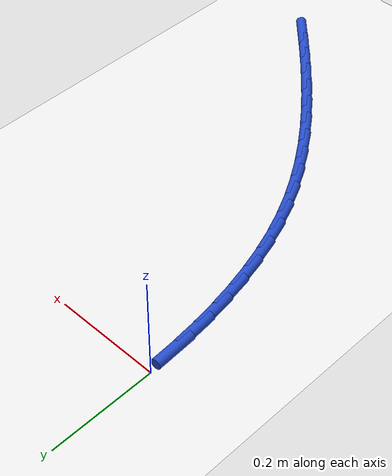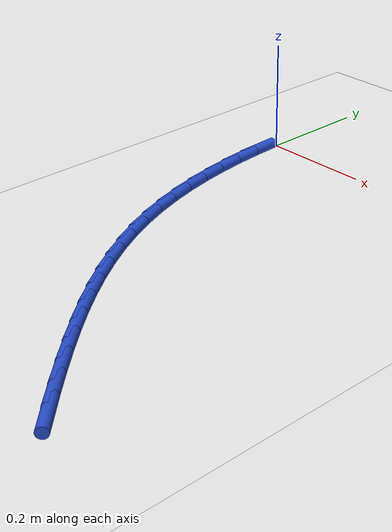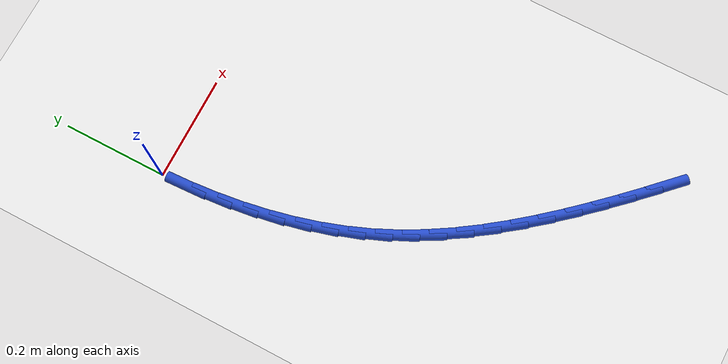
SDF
<sdf version="1.6">
 <world name="default">
  <model name="ground_plane">
   <static>1</static>
   <link name="link">
    <collision name="collision">
     <geometry><plane><normal>0 0 1</normal><size>100 100</size></plane></geometry>
     <surface><friction><ode><mu>100</mu><mu2>50</mu2></ode></friction></surface>
    </collision>
    <visual name="visual">
     <cast_shadows>0</cast_shadows>
     <geometry><plane><normal>0 0 1</normal><size>100 100</size></plane></geometry>
     <material>
      <script><uri>file://media/materials/scripts/gazebo.material</uri><name>Gazebo/WhiteGlow</name></script>
     </material>
    </visual>
   </link>
  </model>
  <model name="line">
   <link name="link_131">
    <pose>0.4038289137963621 -0.8178155869256982 0.01 0 1.57 -0.7874010072202662</pose>
    <collision name="collision">
     <geometry><cylinder><radius>0.01</radius><length>0.08</length></cylinder></geometry>
    </collision>
    <visual name="visual">
     <material>
      <script><name>Gazebo/Blue</name><uri>file://media/materials/scripts/gazebo.material</uri></script>
     </material>
     <geometry><cylinder><radius>0.01</radius><length>0.08</length></cylinder></geometry>
    </visual>
   </link>
   <link name="link_132">
    <pose>0.3675930221454629 -0.7814342541208943 0.01 0 1.57 -0.8059469571669071</pose>
    <collision name="collision">
     <geometry><cylinder><radius>0.01</radius><length>0.08</length></cylinder></geometry>
    </collision>
    <visual name="visual">
     <material>
      <script><name>Gazebo/Blue</name><uri>file://media/materials/scripts/gazebo.material</uri></script>
     </material>
     <geometry><cylinder><radius>0.01</radius><length>0.08</length></cylinder></geometry>
    </visual>
   </link>
   <link name="link_133">
    <pose>0.33219602063763365 -0.7445517876451763 0.01 0 1.57 -0.8232622990101492</pose>
    <collision name="collision">
     <geometry><cylinder><radius>0.01</radius><length>0.08</length></cylinder></geometry>
    </collision>
    <visual name="visual">
     <material>
      <script><name>Gazebo/Blue</name><uri>file://media/materials/scripts/gazebo.material</uri></script>
     </material>
     <geometry><cylinder><radius>0.01</radius><length>0.08</length></cylinder></geometry>
    </visual>
   </link>
   <link name="link_134">
    <pose>0.29767509501728123 -0.7073124213392855 0.01 0 1.57 -0.8440646956104065</pose>
    <collision name="collision">
     <geometry><cylinder><radius>0.01</radius><length>0.08</length></cylinder></geometry>
    </collision>
    <visual name="visual">
     <material>
      <script><name>Gazebo/Blue</name><uri>file://media/materials/scripts/gazebo.material</uri></script>
     </material>
     <geometry><cylinder><radius>0.01</radius><length>0.08</length></cylinder></geometry>
    </visual>
   </link>
   <link name="link_135">
    <pose>0.2642037022417915 -0.6696638750092007 0.01 0 1.57 -0.8698122276736373</pose>
    <collision name="collision">
     <geometry><cylinder><radius>0.01</radius><length>0.08</length></cylinder></geometry>
    </collision>
    <visual name="visual">
     <material>
      <script><name>Gazebo/Blue</name><uri>file://media/materials/scripts/gazebo.material</uri></script>
     </material>
     <geometry><cylinder><radius>0.01</radius><length>0.08</length></cylinder></geometry>
    </visual>
   </link>
   <link name="link_136">
    <pose>0.23199346794149361 -0.6314988261687091 0.01 0 1.57 -0.9006886472476497</pose>
    <collision name="collision">
     <geometry><cylinder><radius>0.01</radius><length>0.08</length></cylinder></geometry>
    </collision>
    <visual name="visual">
     <material>
      <script><name>Gazebo/Blue</name><uri>file://media/materials/scripts/gazebo.material</uri></script>
     </material>
     <geometry><cylinder><radius>0.01</radius><length>0.08</length></cylinder></geometry>
    </visual>
   </link>
   <link name="link_137">
    <pose>0.20125601961234887 -0.5927099496412099 0.01 0 1.57 -0.9368690413403414</pose>
    <collision name="collision">
     <geometry><cylinder><radius>0.01</radius><length>0.08</length></cylinder></geometry>
    </collision>
    <visual name="visual">
     <material>
      <script><name>Gazebo/Blue</name><uri>file://media/materials/scripts/gazebo.material</uri></script>
     </material>
     <geometry><cylinder><radius>0.01</radius><length>0.08</length></cylinder></geometry>
    </visual>
   </link>
   <link name="link_138">
    <pose>0.1722029847503187 -0.5531899202501022 0.01 0 1.57 -0.9784949359965945</pose>
    <collision name="collision">
     <geometry><cylinder><radius>0.01</radius><length>0.08</length></cylinder></geometry>
    </collision>
    <visual name="visual">
     <material>
      <script><name>Gazebo/Blue</name><uri>file://media/materials/scripts/gazebo.material</uri></script>
     </material>
     <geometry><cylinder><radius>0.01</radius><length>0.08</length></cylinder></geometry>
    </visual>
   </link>
   <link name="link_139">
    <pose>0.14504599085136302 -0.5128314128187833 0.01 0 1.57 -1.0256418972959989</pose>
    <collision name="collision">
     <geometry><cylinder><radius>0.01</radius><length>0.08</length></cylinder></geometry>
    </collision>
    <visual name="visual">
     <material>
      <script><name>Gazebo/Blue</name><uri>file://media/materials/scripts/gazebo.material</uri></script>
     </material>
     <geometry><cylinder><radius>0.01</radius><length>0.08</length></cylinder></geometry>
    </visual>
   </link>
   <link name="link_140">
    <pose>0.11999666541144363 -0.47152710217065336 0.01 0 1.57 -1.078280360406479</pose>
    <collision name="collision">
     <geometry><cylinder><radius>0.01</radius><length>0.08</length></cylinder></geometry>
    </collision>
    <visual name="visual">
     <material>
      <script><name>Gazebo/Blue</name><uri>file://media/materials/scripts/gazebo.material</uri></script>
     </material>
     <geometry><cylinder><radius>0.01</radius><length>0.08</length></cylinder></geometry>
    </visual>
   </link>
   <link name="link_141">
    <pose>0.09726663592652061 -0.4291696631291095 0.01 0 1.57 -1.1360947615899943</pose>
    <collision name="collision">
     <geometry><cylinder><radius>0.01</radius><length>0.08</length></cylinder></geometry>
    </collision>
    <visual name="visual">
     <material>
      <script><name>Gazebo/Blue</name><uri>file://media/materials/scripts/gazebo.material</uri></script>
     </material>
     <geometry><cylinder><radius>0.01</radius><length>0.08</length></cylinder></geometry>
    </visual>
   </link>
   <link name="link_142">
    <pose>0.07706169432682186 -0.38565489905793515 0.01 0 1.57 -1.195274962675345</pose>
    <collision name="collision">
     <geometry><cylinder><radius>0.01</radius><length>0.08</length></cylinder></geometry>
    </collision>
    <visual name="visual">
     <material>
      <script><name>Gazebo/Blue</name><uri>file://media/materials/scripts/gazebo.material</uri></script>
     </material>
     <geometry><cylinder><radius>0.01</radius><length>0.08</length></cylinder></geometry>
    </visual>
   </link>
   <link name="link_143">
    <pose>0.059440654985126705 -0.34095741034677707 0.01 0 1.57 -1.2518277869636132</pose>
    <collision name="collision">
     <geometry><cylinder><radius>0.01</radius><length>0.08</length></cylinder></geometry>
    </collision>
    <visual name="visual">
     <material>
      <script><name>Gazebo/Blue</name><uri>file://media/materials/scripts/gazebo.material</uri></script>
     </material>
     <geometry><cylinder><radius>0.01</radius><length>0.08</length></cylinder></geometry>
    </visual>
   </link>
   <link name="link_144">
    <pose>0.044307895899053325 -0.2951345932029481 0.01 0 1.57 -1.3053362289342858</pose>
    <collision name="collision">
     <geometry><cylinder><radius>0.01</radius><length>0.08</length></cylinder></geometry>
    </collision>
    <visual name="visual">
     <material>
      <script><name>Gazebo/Blue</name><uri>file://media/materials/scripts/gazebo.material</uri></script>
     </material>
     <geometry><cylinder><radius>0.01</radius><length>0.08</length></cylinder></geometry>
    </visual>
   </link>
   <link name="link_145">
    <pose>0.03156046659091159 -0.24824777274691576 0.01 0 1.57 -1.355653415743468</pose>
    <collision name="collision">
     <geometry><cylinder><radius>0.01</radius><length>0.08</length></cylinder></geometry>
    </collision>
    <visual name="visual">
     <material>
      <script><name>Gazebo/Blue</name><uri>file://media/materials/scripts/gazebo.material</uri></script>
     </material>
     <geometry><cylinder><radius>0.01</radius><length>0.08</length></cylinder></geometry>
    </visual>
   </link>
   <link name="link_146">
    <pose>0.021095416583010396 -0.20035827409914442 0.01 0 1.57 -1.402717152742429</pose>
    <collision name="collision">
     <geometry><cylinder><radius>0.01</radius><length>0.08</length></cylinder></geometry>
    </collision>
    <visual name="visual">
     <material>
      <script><name>Gazebo/Blue</name><uri>file://media/materials/scripts/gazebo.material</uri></script>
     </material>
     <geometry><cylinder><radius>0.01</radius><length>0.08</length></cylinder></geometry>
    </visual>
   </link>
   <link name="link_147">
    <pose>0.012809795397659295 -0.15152742238010095 0.01 0 1.57 -1.4465347645400366</pose>
    <collision name="collision">
     <geometry><cylinder><radius>0.01</radius><length>0.08</length></cylinder></geometry>
    </collision>
    <visual name="visual">
     <material>
      <script><name>Gazebo/Blue</name><uri>file://media/materials/scripts/gazebo.material</uri></script>
     </material>
     <geometry><cylinder><radius>0.01</radius><length>0.08</length></cylinder></geometry>
    </visual>
   </link>
   <link name="link_148">
    <pose>0.006600652557167718 -0.10181654271025228 0.01 0 1.57 -1.4871673750600534</pose>
    <collision name="collision">
     <geometry><cylinder><radius>0.01</radius><length>0.08</length></cylinder></geometry>
    </collision>
    <visual name="visual">
     <material>
      <script><name>Gazebo/Blue</name><uri>file://media/materials/scripts/gazebo.material</uri></script>
     </material>
     <geometry><cylinder><radius>0.01</radius><length>0.08</length></cylinder></geometry>
    </visual>
   </link>
   <link name="link_149">
    <pose>0.002365037583844791 -0.05128696021006276 0.01 0 1.57 -1.5247151532421102</pose>
    <collision name="collision">
     <geometry><cylinder><radius>0.01</radius><length>0.08</length></cylinder></geometry>
    </collision>
    <visual name="visual">
     <material>
      <script><name>Gazebo/Blue</name><uri>file://media/materials/scripts/gazebo.material</uri></script>
     </material>
     <geometry><cylinder><radius>0.01</radius><length>0.08</length></cylinder></geometry>
    </visual>
   </link>
  </model>
 </world>
</sdf>
